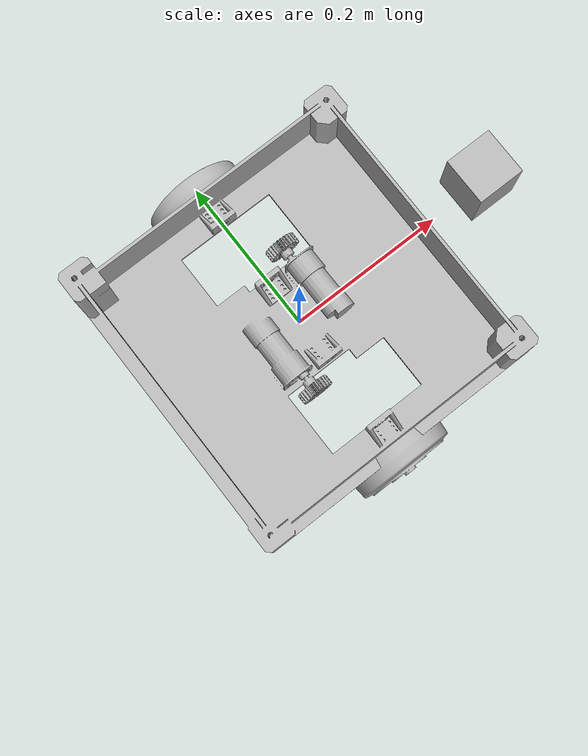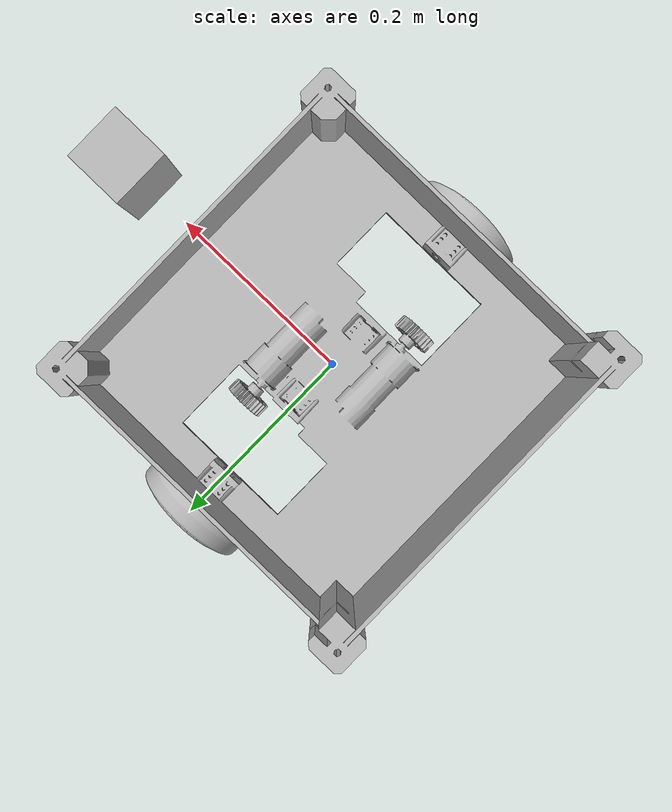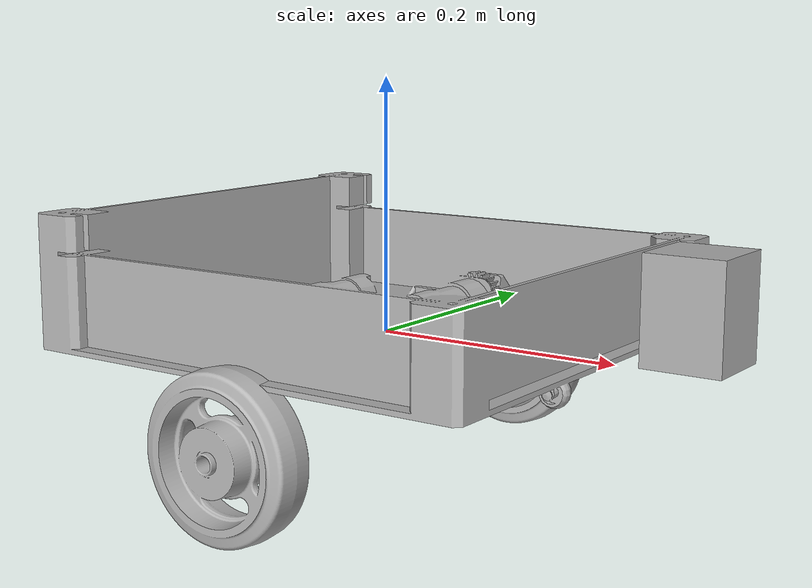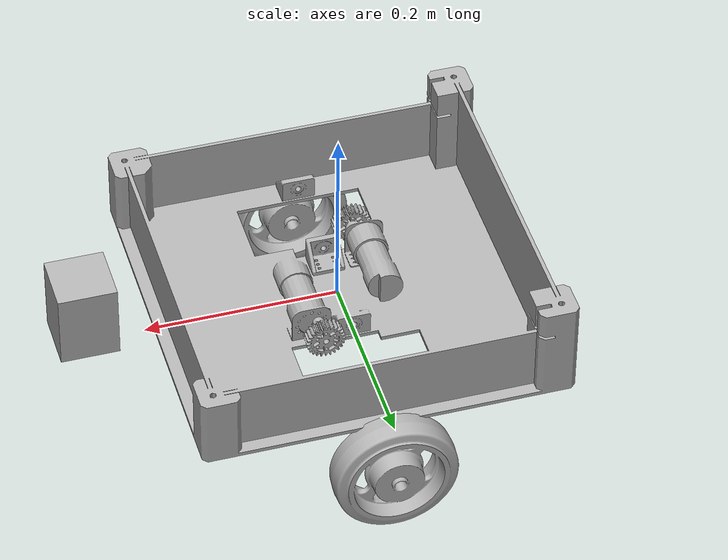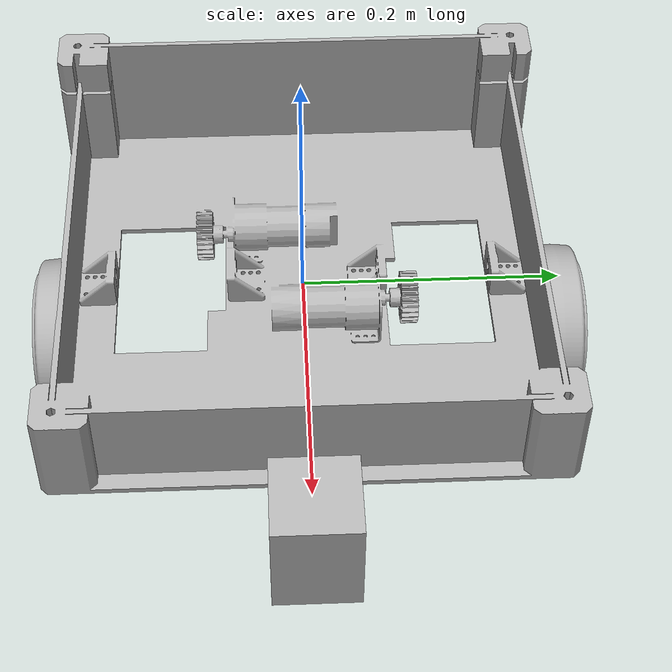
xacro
<?xml version="1.0" ?>
<robot name="mr_robot" xmlns:xacro="http://www.ros.org/wiki/xacro">

<xacro:include filename="$(find mr_robot_description)/urdf/materials.xacro" />
<xacro:include filename="$(find mr_robot_description)/urdf/mr_robot.trans" />
<xacro:include filename="$(find mr_robot_description)/urdf/mr_robot.gazebo" />

<!-- BASE FOOTPRINT LINK -->

<link name="base_footprint">
</link>

<joint name="base_link_joint" type="fixed">
  <parent link="base_footprint"/>
  <child link="base_link"/>
  <origin xyz="0 0 0" rpy="0 0 0"/>
</joint>

<link name="base_link">
  <inertial>
    <origin xyz="0.012766113385218509 0.001494146835147567 -0.03149101238341765" rpy="0 0 0"/>
    <mass value="12.614502148022185"/>
    <inertia ixx="0.186871" iyy="0.487701" izz="0.654211" ixy="0.000719" iyz="0.000234" ixz="-0.008931"/>
  </inertial>
  <visual>
    <origin xyz="0 0 0" rpy="0 0 0"/>
    <geometry>
      <mesh filename="file://$(find mr_robot_description)/meshes/base_link.stl" scale="0.001 0.001 0.001"/>
    </geometry>
    <material name="silver"/>
  </visual>
  <collision>
    <origin xyz="0 0 0" rpy="0 0 0"/>
    <geometry>
      <mesh filename="file://$(find mr_robot_description)/meshes/base_link.stl" scale="0.001 0.001 0.001"/>
    </geometry>
  </collision>
</link>

<link name="right_wheel__1">
  <inertial>
    <origin xyz="1.7607591147781841e-15 -0.01799999999998969 -8.17274483436159e-08" rpy="0 0 0"/>
    <mass value="2.2573668453470317"/>
    <inertia ixx="0.002744" iyy="0.005023" izz="0.002744" ixy="0.0" iyz="-0.0" ixz="-0.0"/>
  </inertial>
  <visual>
    <origin xyz="-0.0 0.172825 0.0556" rpy="0 0 0"/>
    <geometry>
      <mesh filename="file://$(find mr_robot_description)/meshes/right_wheel__1.stl" scale="0.001 0.001 0.001"/>
    </geometry>
    <material name="silver"/>
  </visual>
  <collision>
    <origin xyz="-0.0 0.172825 0.0556" rpy="0 0 0"/>
    <geometry>
      <mesh filename="file://$(find mr_robot_description)/meshes/right_wheel__1.stl" scale="0.001 0.001 0.001"/>
    </geometry>
  </collision>
</link>

<link name="left_wheel_1">
  <inertial>
    <origin xyz="-2.5183111525986615e-15 0.019999999999999296 1.594976928309677e-11" rpy="0 0 0"/>
    <mass value="2.257366845347031"/>
    <inertia ixx="0.002744" iyy="0.005023" izz="0.002744" ixy="0.0" iyz="-0.0" ixz="-0.0"/>
  </inertial>
  <visual>
    <origin xyz="0.0 -0.181075 0.0556" rpy="0 0 0"/>
    <geometry>
      <mesh filename="file://$(find mr_robot_description)/meshes/left_wheel_1.stl" scale="0.001 0.001 0.001"/>
    </geometry>
    <material name="silver"/>
  </visual>
  <collision>
    <origin xyz="0.0 -0.181075 0.0556" rpy="0 0 0"/>
    <geometry>
      <mesh filename="file://$(find mr_robot_description)/meshes/left_wheel_1.stl" scale="0.001 0.001 0.001"/>
    </geometry>
  </collision>
</link>

<link name="camera_link">
  <inertial>
    <origin xyz="0.010770081312650281 6.0979034436917104e-05 0.016953604004055788" rpy="0 0 0"/>
    <mass value="1.190968470775162"/>
    <inertia ixx="0.000484" iyy="0.000863" izz="0.001091" ixy="-1e-06" iyz="2e-06" ixz="0.000116"/>
  </inertial>
  <visual>
    <origin xyz="0 0 0.04" rpy="0 0 0"/>
    <geometry>
      <box size="0.06 0.06 0.08"/>
    </geometry>
    <material name="silver"/>
  </visual>
  <collision>
    <origin xyz="0 0 0.04" rpy="0 0 0"/>
    <geometry>
      <box size="0.06 0.06 0.08"/>
    </geometry>
  </collision>
</link>

<joint name="right_motor_joint" type="continuous">
  <origin xyz="0.0 -0.172825 -0.0556" rpy="0 0 0"/>
  <parent link="base_link"/>
  <child link="right_wheel__1"/>
  <axis xyz="0.0 1.0 0.0"/>
</joint>

<joint name="left_motor_joint" type="continuous">
  <origin xyz="0.0 0.181075 -0.0556" rpy="0 0 0"/>
  <parent link="base_link"/>
  <child link="left_wheel_1"/>
  <axis xyz="-0.0 1.0 0.0"/>
</joint>

<joint name="camera_joint" type="fixed">
  <origin xyz="0.2625 0.0 0.0085" rpy="0 0 0"/>
  <parent link="base_link"/>
  <child link="camera_link"/>
</joint>

</robot>

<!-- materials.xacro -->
<robot name="mr_robot" xmlns:xacro="http://www.ros.org/wiki/xacro" >

<material name="silver">
  <color rgba="0.700 0.700 0.700 1.000"/>
</material>

<material name="red">
  <color rgba="1.000 0 0 1.000"/>
</material>

<material name="black">
  <color rgba="0.0 0.0 0.0 1.0"/>
</material>

<material name="blue">
  <color rgba="0.0 0.0 1.0 1.0"/>
</material>

</robot>

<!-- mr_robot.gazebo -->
<robot name="mr_robot" xmlns:xacro="http://www.ros.org/wiki/xacro">

    <xacro:property name="body_color" value="Gazebo/Silver" />
    <xacro:property name="wheel_color" value="Gazebo/Black" />
    <xacro:property name="lidar_color" value="Gazebo/Blue" />

    <gazebo reference="base_link">
        <material>${body_color}</material>
        <mu1>0.2</mu1>
        <mu2>0.2</mu2>
        <self_collide>true</self_collide>
        <gravity>true</gravity>
    </gazebo>

    <gazebo reference="right_wheel__1">
        <material>${wheel_color}</material>
        <mu1>0.2</mu1>
        <mu2>0.2</mu2>
        <self_collide>true</self_collide>
    </gazebo>

    <gazebo reference="left_wheel_1">
        <material>${wheel_color}</material>
        <mu1>0.2</mu1>
        <mu2>0.2</mu2>
        <self_collide>true</self_collide>
    </gazebo>

    <gazebo reference="camera_link">
        <material>${lidar_color}</material>
        <mu1>0.2</mu1>
        <mu2>0.2</mu2>
        <self_collide>true</self_collide>

        <sensor name="camera" type="rgbd_camera">
            <pose>0 0 0.032 0 0 0</pose> <!-- Camera is at origin of Lidar_1 and looks along +X -->
            <always_on>true</always_on>
            <update_rate>25</update_rate>
            <visualize>true</visualize>

            <topic>/cam</topic>

            <camera name="cam">
                <horizontal_fov>1.50098</horizontal_fov>
                <lens>
                    <intrinsics>
                        <!-- fx = fy = width / ( 2 * tan (hfov / 2 ) ) -->
                        <fx>343.159</fx>
                        <fy>343.159</fy>
                        <!-- cx = ( width - 1 ) / 2 -->
                        <cx>319.5</cx>
                        <!-- cy = ( height - 1 ) / 2 -->
                        <cy>179.5</cy>
                        <s>0</s>
                    </intrinsics>
                </lens>
                <distortion>
                    <k1>0.0</k1>
                    <k2>0.0</k2>
                    <k3>0.0</k3>
                    <p1>0.0</p1>
                    <p2>0.0</p2>
                    <center>0.5 0.5</center>
                </distortion>
                <image>
                    <width>640</width>
                    <height>480</height>
                    <format>R8G8B8</format>
                </image>
                <clip>
                    <near>0.01</near>
                    <far>300</far>
                </clip>
                <depth_camera>
                    <clip>
                        <near>0.1</near>
                        <far>10</far>
                    </clip>
                </depth_camera>
                <noise>
                    <type>gaussian</type>
                    <mean>0</mean>
                    <stddev>0.007</stddev>
                </noise>
            </camera>
        </sensor>
    </gazebo>

    <!-- ........................... SENSOR PLUGIN ................................... -->

    <gazebo>
        <plugin filename="gz-sim-sensors-system" name="gz::sim::systems::Sensors">
            <render_engine>ogre2</render_engine>
        </plugin>

        <plugin filename="libgz-sim-joint-state-publisher-system.so"
            name="gz::sim::systems::JointStatePublisher">
            <topic>/joint_states</topic>
        </plugin>

        <!-- ........................... DIFFERENTIAL DRIVE PLUGIN
        ................................... -->

        <plugin filename="gz-sim-diff-drive-system"
            name="gz::sim::systems::DiffDrive">
            <left_joint>left_motor_joint</left_joint>
            <right_joint>right_motor_joint</right_joint>
            <wheel_separation>0.354</wheel_separation>
            <wheel_diameter>0.107</wheel_diameter>
            <odom_publish_frequency>30</odom_publish_frequency>
            <topic>/cmd_vel</topic>
            <odom_topic>/odom</odom_topic>
            <odom_frame>odom</odom_frame>
            <frame_id>odom</frame_id>
            <child_frame_id>base_footprint</child_frame_id>
            <publish_odom>true</publish_odom>
            <publish_tf>true</publish_tf>
            <publish_odom_tf>true</publish_odom_tf>
            <publish_wheel_tf>true</publish_wheel_tf>
        </plugin>

    </gazebo>

    <gazebo>
        <plugin filename="libignition-gazebo6-odometry-publisher-system"
            name="ignition::gazebo::systems::OdometryPublisher">
            <odom_frame>odom</odom_frame>
            <robot_base_frame>base_footprint</robot_base_frame>
            <odom_topic>/odom</odom_topic>
            <tf_topic>/tf</tf_topic>
            <dimensions>2</dimensions>
            <odom_publish_frequency>10</odom_publish_frequency>
        </plugin>
    </gazebo>

</robot>
